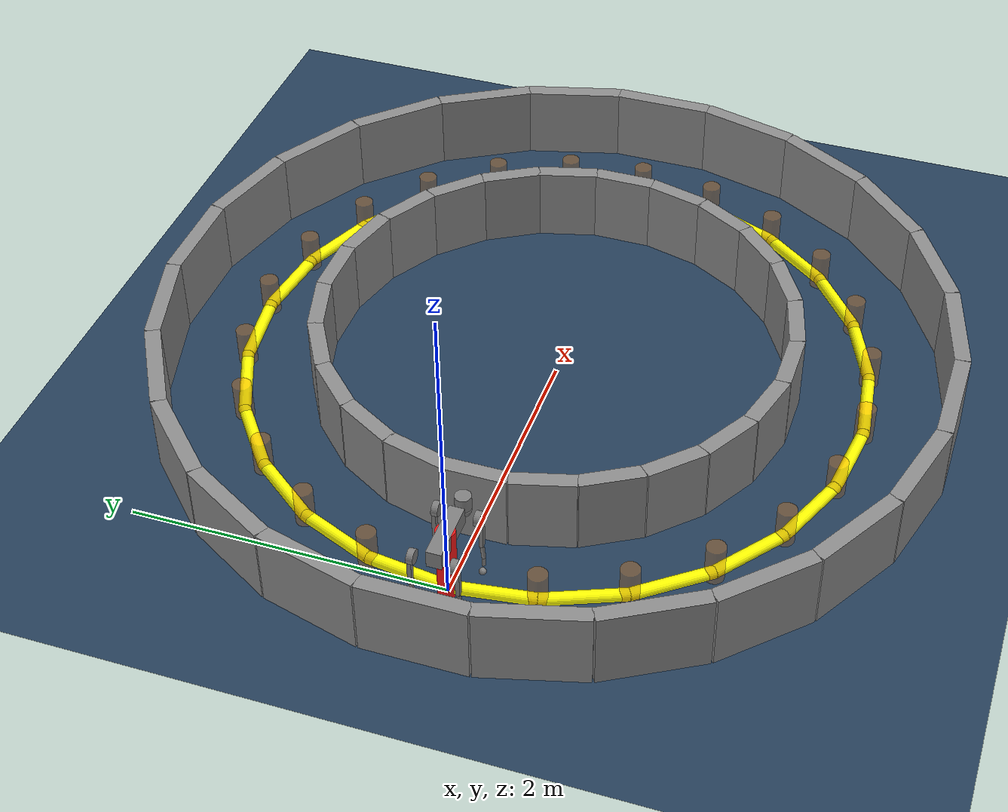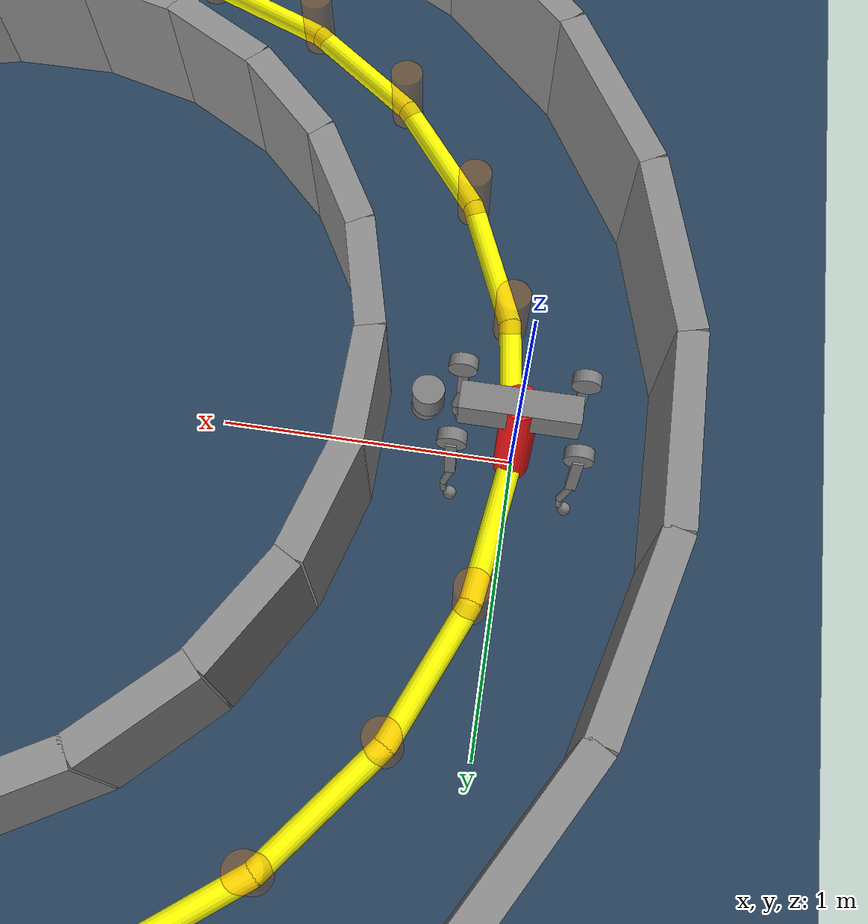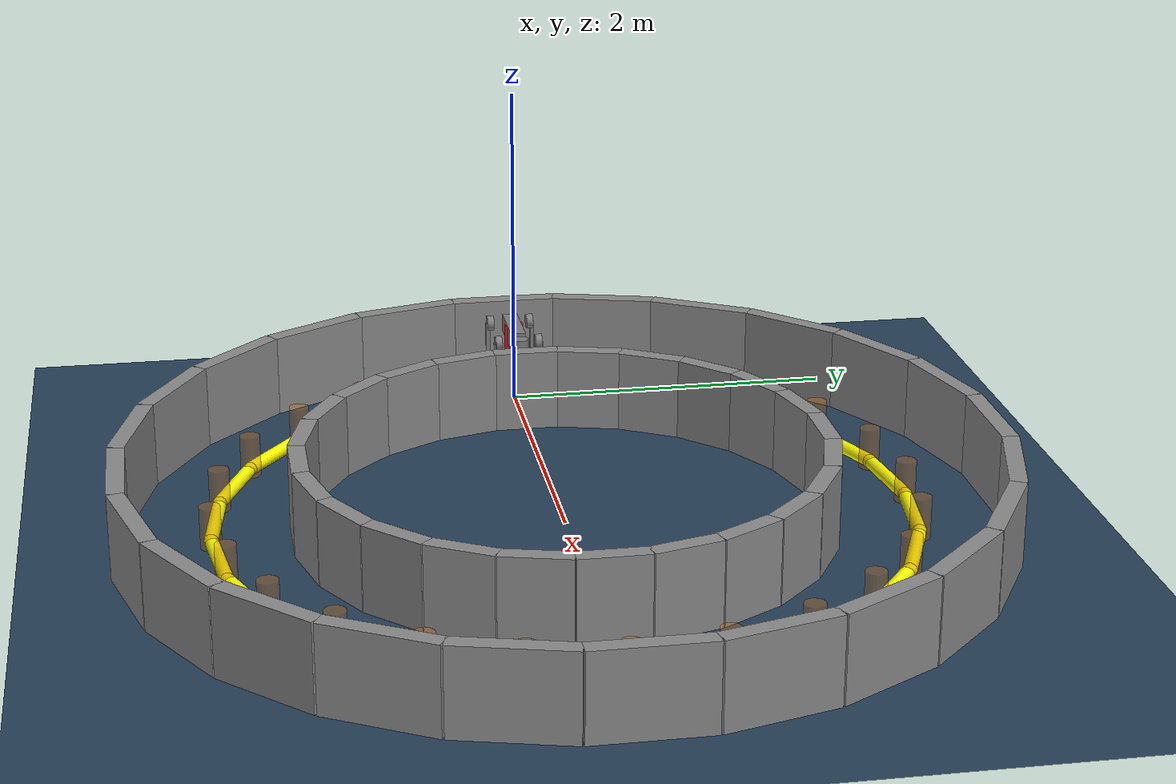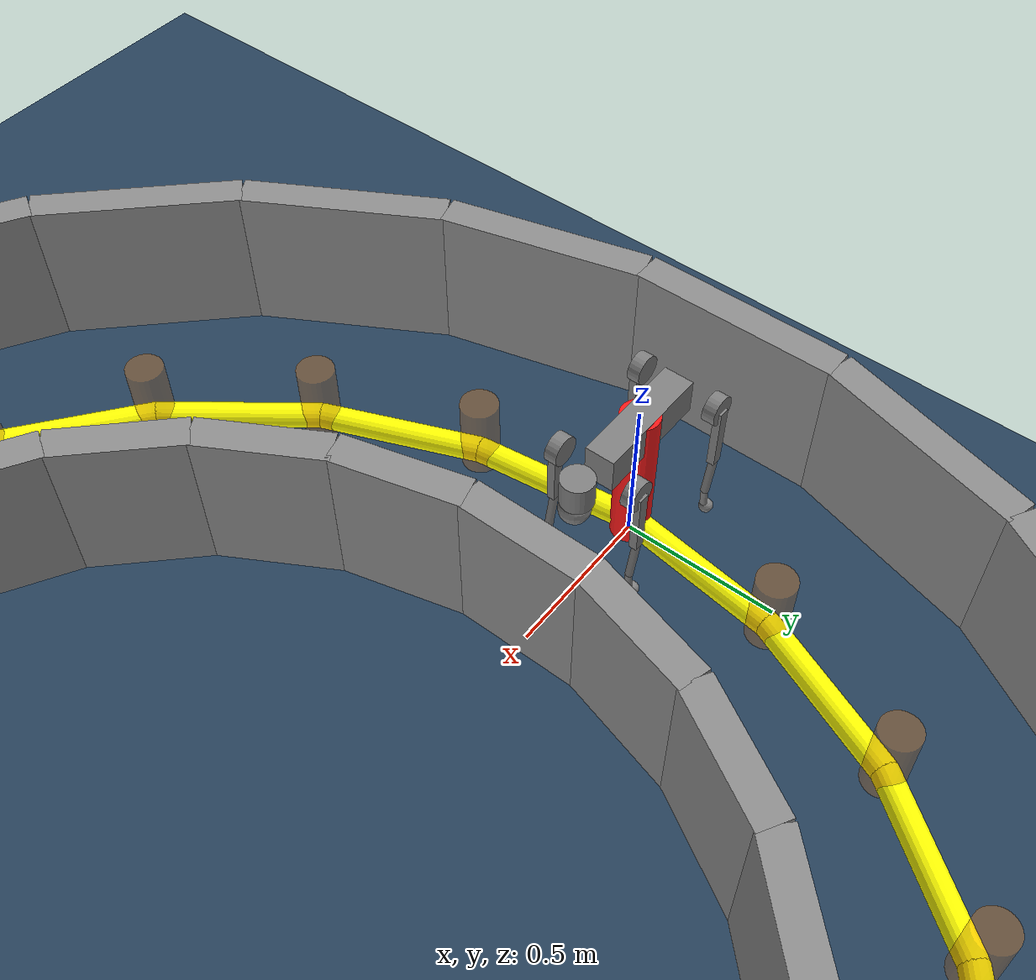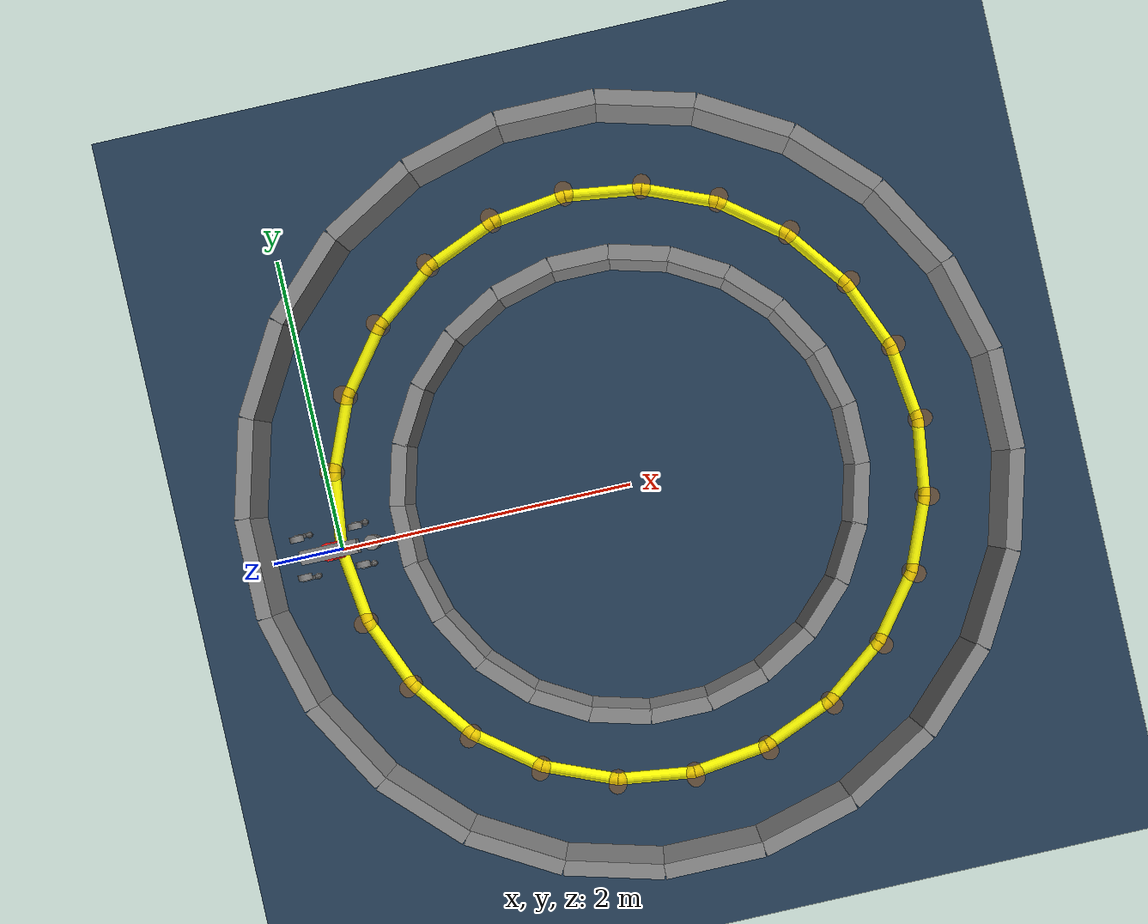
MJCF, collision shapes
<mujoco model="go2 small circle path walled">
  <include file="go2.xml"/>

  <statistic center="2 0 0" extent="4"/>

  <visual>
    <headlight diffuse="0.6 0.6 0.6" ambient="0.3 0.3 0.3" specular="0 0 0"/>
    <rgba haze="0.15 0.25 0.35 1"/>
    <global azimuth="-130" elevation="-20"/>
  </visual>

  <asset>
    <texture type="skybox" builtin="gradient" rgb1="0.3 0.5 0.7" rgb2="0 0 0" width="512" height="3072"/>
    <texture type="2d" name="groundplane" builtin="checker" mark="edge" rgb1="0.2 0.3 0.4" rgb2="0.1 0.2 0.3"
      markrgb="0.8 0.8 0.8" width="300" height="300"/>
    <material name="groundplane" texture="groundplane" texuniform="true" texrepeat="5 5" reflectance="0.2"/>
  </asset>

  <worldbody>
    <light pos="2 0 4" dir="0 0 -1" directional="true"/>
    <geom name="floor" size="0 0 0.05" type="plane" material="groundplane"/>

    <!-- ── Poles (Red = spawn/finish, Orange = intermediate) ─────────────── -->
    <geom name="pole_0"  type="cylinder" pos=" 4.000  0.000 0.125" size="0.06 0.125" rgba="1.0 0.5 0.0 0.3" contype="0" conaffinity="0"/>
    <geom name="pole_1"  type="cylinder" pos=" 3.932  0.518 0.125" size="0.06 0.125" rgba="1.0 0.5 0.0 0.3" contype="0" conaffinity="0"/>
    <geom name="pole_2"  type="cylinder" pos=" 3.732  1.000 0.125" size="0.06 0.125" rgba="1.0 0.5 0.0 0.3" contype="0" conaffinity="0"/>
    <geom name="pole_3"  type="cylinder" pos=" 3.414  1.414 0.125" size="0.06 0.125" rgba="1.0 0.5 0.0 0.3" contype="0" conaffinity="0"/>
    <geom name="pole_4"  type="cylinder" pos=" 3.000  1.732 0.125" size="0.06 0.125" rgba="1.0 0.5 0.0 0.3" contype="0" conaffinity="0"/>
    <geom name="pole_5"  type="cylinder" pos=" 2.518  1.932 0.125" size="0.06 0.125" rgba="1.0 0.5 0.0 0.3" contype="0" conaffinity="0"/>
    <geom name="pole_6"  type="cylinder" pos=" 2.000  2.000 0.125" size="0.06 0.125" rgba="1.0 0.5 0.0 0.3" contype="0" conaffinity="0"/>
    <geom name="pole_7"  type="cylinder" pos=" 1.482  1.932 0.125" size="0.06 0.125" rgba="1.0 0.5 0.0 0.3" contype="0" conaffinity="0"/>
    <geom name="pole_8"  type="cylinder" pos=" 1.000  1.732 0.125" size="0.06 0.125" rgba="1.0 0.5 0.0 0.3" contype="0" conaffinity="0"/>
    <geom name="pole_9"  type="cylinder" pos=" 0.586  1.414 0.125" size="0.06 0.125" rgba="1.0 0.5 0.0 0.3" contype="0" conaffinity="0"/>
    <geom name="pole_10" type="cylinder" pos=" 0.268  1.000 0.125" size="0.06 0.125" rgba="1.0 0.5 0.0 0.3" contype="0" conaffinity="0"/>
    <geom name="pole_11" type="cylinder" pos=" 0.068  0.518 0.125" size="0.06 0.125" rgba="1.0 0.5 0.0 0.3" contype="0" conaffinity="0"/>
    <geom name="pole_12" type="cylinder" pos=" 0.000  0.000 0.25" size="0.06 0.25" rgba="1.0 0.1 0.1 1" contype="0" conaffinity="0"/>
    <geom name="pole_13" type="cylinder" pos=" 0.068 -0.518 0.125" size="0.06 0.125" rgba="1.0 0.5 0.0 0.3" contype="0" conaffinity="0"/>
    <geom name="pole_14" type="cylinder" pos=" 0.268 -1.000 0.125" size="0.06 0.125" rgba="1.0 0.5 0.0 0.3" contype="0" conaffinity="0"/>
    <geom name="pole_15" type="cylinder" pos=" 0.586 -1.414 0.125" size="0.06 0.125" rgba="1.0 0.5 0.0 0.3" contype="0" conaffinity="0"/>
    <geom name="pole_16" type="cylinder" pos=" 1.000 -1.732 0.125" size="0.06 0.125" rgba="1.0 0.5 0.0 0.3" contype="0" conaffinity="0"/>
    <geom name="pole_17" type="cylinder" pos=" 1.482 -1.932 0.125" size="0.06 0.125" rgba="1.0 0.5 0.0 0.3" contype="0" conaffinity="0"/>
    <geom name="pole_18" type="cylinder" pos=" 2.000 -2.000 0.125" size="0.06 0.125" rgba="1.0 0.5 0.0 0.3" contype="0" conaffinity="0"/>
    <geom name="pole_19" type="cylinder" pos=" 2.518 -1.932 0.125" size="0.06 0.125" rgba="1.0 0.5 0.0 0.3" contype="0" conaffinity="0"/>
    <geom name="pole_20" type="cylinder" pos=" 3.000 -1.732 0.125" size="0.06 0.125" rgba="1.0 0.5 0.0 0.3" contype="0" conaffinity="0"/>
    <geom name="pole_21" type="cylinder" pos=" 3.414 -1.414 0.125" size="0.06 0.125" rgba="1.0 0.5 0.0 0.3" contype="0" conaffinity="0"/>
    <geom name="pole_22" type="cylinder" pos=" 3.732 -1.000 0.125" size="0.06 0.125" rgba="1.0 0.5 0.0 0.3" contype="0" conaffinity="0"/>
    <geom name="pole_23" type="cylinder" pos=" 3.932 -0.518 0.125" size="0.06 0.125" rgba="1.0 0.5 0.0 0.3" contype="0" conaffinity="0"/>

    <!-- ── Arc segments (capsule fromto, CW order) ───────────────────────── -->
    <geom name="arc_0"  type="capsule" fromto=" 4.000  0.000 0.04   3.932  0.518 0.04" size="0.04" rgba="1 1 0 0.9" contype="0" conaffinity="0"/>
    <geom name="arc_1"  type="capsule" fromto=" 3.932  0.518 0.04   3.732  1.000 0.04" size="0.04" rgba="1 1 0 0.9" contype="0" conaffinity="0"/>
    <geom name="arc_2"  type="capsule" fromto=" 3.732  1.000 0.04   3.414  1.414 0.04" size="0.04" rgba="1 1 0 0.9" contype="0" conaffinity="0"/>
    <geom name="arc_3"  type="capsule" fromto=" 3.414  1.414 0.04   3.000  1.732 0.04" size="0.04" rgba="1 1 0 0.9" contype="0" conaffinity="0"/>
    <geom name="arc_4"  type="capsule" fromto=" 3.000  1.732 0.04   2.518  1.932 0.04" size="0.04" rgba="1 1 0 0.9" contype="0" conaffinity="0"/>
    <geom name="arc_5"  type="capsule" fromto=" 2.518  1.932 0.04   2.000  2.000 0.04" size="0.04" rgba="1 1 0 0.9" contype="0" conaffinity="0"/>
    <geom name="arc_6"  type="capsule" fromto=" 2.000  2.000 0.04   1.482  1.932 0.04" size="0.04" rgba="1 1 0 0.9" contype="0" conaffinity="0"/>
    <geom name="arc_7"  type="capsule" fromto=" 1.482  1.932 0.04   1.000  1.732 0.04" size="0.04" rgba="1 1 0 0.9" contype="0" conaffinity="0"/>
    <geom name="arc_8"  type="capsule" fromto=" 1.000  1.732 0.04   0.586  1.414 0.04" size="0.04" rgba="1 1 0 0.9" contype="0" conaffinity="0"/>
    <geom name="arc_9"  type="capsule" fromto=" 0.586  1.414 0.04   0.268  1.000 0.04" size="0.04" rgba="1 1 0 0.9" contype="0" conaffinity="0"/>
    <geom name="arc_10" type="capsule" fromto=" 0.268  1.000 0.04   0.068  0.518 0.04" size="0.04" rgba="1 1 0 0.9" contype="0" conaffinity="0"/>
    <geom name="arc_11" type="capsule" fromto=" 0.068  0.518 0.04   0.000  0.000 0.04" size="0.04" rgba="1 1 0 0.9" contype="0" conaffinity="0"/>
    <geom name="arc_12" type="capsule" fromto=" 0.000  0.000 0.04   0.068 -0.518 0.04" size="0.04" rgba="1 1 0 0.9" contype="0" conaffinity="0"/>
    <geom name="arc_13" type="capsule" fromto=" 0.068 -0.518 0.04   0.268 -1.000 0.04" size="0.04" rgba="1 1 0 0.9" contype="0" conaffinity="0"/>
    <geom name="arc_14" type="capsule" fromto=" 0.268 -1.000 0.04   0.586 -1.414 0.04" size="0.04" rgba="1 1 0 0.9" contype="0" conaffinity="0"/>
    <geom name="arc_15" type="capsule" fromto=" 0.586 -1.414 0.04   1.000 -1.732 0.04" size="0.04" rgba="1 1 0 0.9" contype="0" conaffinity="0"/>
    <geom name="arc_16" type="capsule" fromto=" 1.000 -1.732 0.04   1.482 -1.932 0.04" size="0.04" rgba="1 1 0 0.9" contype="0" conaffinity="0"/>
    <geom name="arc_17" type="capsule" fromto=" 1.482 -1.932 0.04   2.000 -2.000 0.04" size="0.04" rgba="1 1 0 0.9" contype="0" conaffinity="0"/>
    <geom name="arc_18" type="capsule" fromto=" 2.000 -2.000 0.04   2.518 -1.932 0.04" size="0.04" rgba="1 1 0 0.9" contype="0" conaffinity="0"/>
    <geom name="arc_19" type="capsule" fromto=" 2.518 -1.932 0.04   3.000 -1.732 0.04" size="0.04" rgba="1 1 0 0.9" contype="0" conaffinity="0"/>
    <geom name="arc_20" type="capsule" fromto=" 3.000 -1.732 0.04   3.414 -1.414 0.04" size="0.04" rgba="1 1 0 0.9" contype="0" conaffinity="0"/>
    <geom name="arc_21" type="capsule" fromto=" 3.414 -1.414 0.04   3.732 -1.000 0.04" size="0.04" rgba="1 1 0 0.9" contype="0" conaffinity="0"/>
    <geom name="arc_22" type="capsule" fromto=" 3.732 -1.000 0.04   3.932 -0.518 0.04" size="0.04" rgba="1 1 0 0.9" contype="0" conaffinity="0"/>
    <geom name="arc_23" type="capsule" fromto=" 3.932 -0.518 0.04   4.000  0.000 0.04" size="0.04" rgba="1 1 0 0.9" contype="0" conaffinity="0"/>

    <!-- ── Outer ring walls (r=2.5 m, half-len=0.33 m) ──────────────────── -->
    <geom name="wall_out_0"  type="box" pos=" 4.500  0.000 0.25" size="0.33 0.05 0.25" euler="0 0 1.5708" rgba="0.55 0.55 0.55 1"/>
    <geom name="wall_out_1"  type="box" pos=" 4.415  0.647 0.25" size="0.33 0.05 0.25" euler="0 0 1.8326" rgba="0.55 0.55 0.55 1"/>
    <geom name="wall_out_2"  type="box" pos=" 4.165  1.250 0.25" size="0.33 0.05 0.25" euler="0 0 2.0944" rgba="0.55 0.55 0.55 1"/>
    <geom name="wall_out_3"  type="box" pos=" 3.768  1.768 0.25" size="0.33 0.05 0.25" euler="0 0 2.3562" rgba="0.55 0.55 0.55 1"/>
    <geom name="wall_out_4"  type="box" pos=" 3.250  2.165 0.25" size="0.33 0.05 0.25" euler="0 0 2.6180" rgba="0.55 0.55 0.55 1"/>
    <geom name="wall_out_5"  type="box" pos=" 2.647  2.415 0.25" size="0.33 0.05 0.25" euler="0 0 2.8798" rgba="0.55 0.55 0.55 1"/>
    <geom name="wall_out_6"  type="box" pos=" 2.000  2.500 0.25" size="0.33 0.05 0.25" euler="0 0 3.1416" rgba="0.55 0.55 0.55 1"/>
    <geom name="wall_out_7"  type="box" pos=" 1.353  2.415 0.25" size="0.33 0.05 0.25" euler="0 0 3.4034" rgba="0.55 0.55 0.55 1"/>
    <geom name="wall_out_8"  type="box" pos=" 0.750  2.165 0.25" size="0.33 0.05 0.25" euler="0 0 3.6652" rgba="0.55 0.55 0.55 1"/>
    <geom name="wall_out_9"  type="box" pos=" 0.232  1.768 0.25" size="0.33 0.05 0.25" euler="0 0 3.9270" rgba="0.55 0.55 0.55 1"/>
    <geom name="wall_out_10" type="box" pos="-0.165  1.250 0.25" size="0.33 0.05 0.25" euler="0 0 4.1888" rgba="0.55 0.55 0.55 1"/>
    <geom name="wall_out_11" type="box" pos="-0.415  0.647 0.25" size="0.33 0.05 0.25" euler="0 0 4.4506" rgba="0.55 0.55 0.55 1"/>
    <geom name="wall_out_12" type="box" pos="-0.500  0.000 0.25" size="0.33 0.05 0.25" euler="0 0 4.7124" rgba="0.55 0.55 0.55 1"/>
    <geom name="wall_out_13" type="box" pos="-0.415 -0.647 0.25" size="0.33 0.05 0.25" euler="0 0 4.9742" rgba="0.55 0.55 0.55 1"/>
    <geom name="wall_out_14" type="box" pos="-0.165 -1.250 0.25" size="0.33 0.05 0.25" euler="0 0 5.2360" rgba="0.55 0.55 0.55 1"/>
    <geom name="wall_out_15" type="box" pos=" 0.232 -1.768 0.25" size="0.33 0.05 0.25" euler="0 0 5.4978" rgba="0.55 0.55 0.55 1"/>
    <geom name="wall_out_16" type="box" pos=" 0.750 -2.165 0.25" size="0.33 0.05 0.25" euler="0 0 5.7596" rgba="0.55 0.55 0.55 1"/>
    <geom name="wall_out_17" type="box" pos=" 1.353 -2.415 0.25" size="0.33 0.05 0.25" euler="0 0 6.0214" rgba="0.55 0.55 0.55 1"/>
    <geom name="wall_out_18" type="box" pos=" 2.000 -2.500 0.25" size="0.33 0.05 0.25" euler="0 0 0.0000" rgba="0.55 0.55 0.55 1"/>
    <geom name="wall_out_19" type="box" pos=" 2.647 -2.415 0.25" size="0.33 0.05 0.25" euler="0 0 0.2618" rgba="0.55 0.55 0.55 1"/>
    <geom name="wall_out_20" type="box" pos=" 3.250 -2.165 0.25" size="0.33 0.05 0.25" euler="0 0 0.5236" rgba="0.55 0.55 0.55 1"/>
    <geom name="wall_out_21" type="box" pos=" 3.768 -1.768 0.25" size="0.33 0.05 0.25" euler="0 0 0.7854" rgba="0.55 0.55 0.55 1"/>
    <geom name="wall_out_22" type="box" pos=" 4.165 -1.250 0.25" size="0.33 0.05 0.25" euler="0 0 1.0472" rgba="0.55 0.55 0.55 1"/>
    <geom name="wall_out_23" type="box" pos=" 4.415 -0.647 0.25" size="0.33 0.05 0.25" euler="0 0 1.3090" rgba="0.55 0.55 0.55 1"/>

    <!-- ── Inner ring walls (r=1.5 m, half-len=0.20 m) ──────────────────── -->
    <geom name="wall_in_0"  type="box" pos="3.500  0.000 0.25" size="0.20 0.05 0.25" euler="0 0 1.5708" rgba="0.55 0.55 0.55 1"/>
    <geom name="wall_in_1"  type="box" pos="3.449  0.388 0.25" size="0.20 0.05 0.25" euler="0 0 1.8326" rgba="0.55 0.55 0.55 1"/>
    <geom name="wall_in_2"  type="box" pos="3.299  0.750 0.25" size="0.20 0.05 0.25" euler="0 0 2.0944" rgba="0.55 0.55 0.55 1"/>
    <geom name="wall_in_3"  type="box" pos="3.061  1.061 0.25" size="0.20 0.05 0.25" euler="0 0 2.3562" rgba="0.55 0.55 0.55 1"/>
    <geom name="wall_in_4"  type="box" pos="2.750  1.299 0.25" size="0.20 0.05 0.25" euler="0 0 2.6180" rgba="0.55 0.55 0.55 1"/>
    <geom name="wall_in_5"  type="box" pos="2.388  1.449 0.25" size="0.20 0.05 0.25" euler="0 0 2.8798" rgba="0.55 0.55 0.55 1"/>
    <geom name="wall_in_6"  type="box" pos="2.000  1.500 0.25" size="0.20 0.05 0.25" euler="0 0 3.1416" rgba="0.55 0.55 0.55 1"/>
    <geom name="wall_in_7"  type="box" pos="1.612  1.449 0.25" size="0.20 0.05 0.25" euler="0 0 3.4034" rgba="0.55 0.55 0.55 1"/>
    <geom name="wall_in_8"  type="box" pos="1.250  1.299 0.25" size="0.20 0.05 0.25" euler="0 0 3.6652" rgba="0.55 0.55 0.55 1"/>
    <geom name="wall_in_9"  type="box" pos="0.939  1.061 0.25" size="0.20 0.05 0.25" euler="0 0 3.9270" rgba="0.55 0.55 0.55 1"/>
    <geom name="wall_in_10" type="box" pos="0.701  0.750 0.25" size="0.20 0.05 0.25" euler="0 0 4.1888" rgba="0.55 0.55 0.55 1"/>
    <geom name="wall_in_11" type="box" pos="0.551  0.388 0.25" size="0.20 0.05 0.25" euler="0 0 4.4506" rgba="0.55 0.55 0.55 1"/>
    <geom name="wall_in_12" type="box" pos="0.500  0.000 0.25" size="0.20 0.05 0.25" euler="0 0 4.7124" rgba="0.55 0.55 0.55 1"/>
    <geom name="wall_in_13" type="box" pos="0.551 -0.388 0.25" size="0.20 0.05 0.25" euler="0 0 4.9742" rgba="0.55 0.55 0.55 1"/>
    <geom name="wall_in_14" type="box" pos="0.701 -0.750 0.25" size="0.20 0.05 0.25" euler="0 0 5.2360" rgba="0.55 0.55 0.55 1"/>
    <geom name="wall_in_15" type="box" pos="0.939 -1.061 0.25" size="0.20 0.05 0.25" euler="0 0 5.4978" rgba="0.55 0.55 0.55 1"/>
    <geom name="wall_in_16" type="box" pos="1.250 -1.299 0.25" size="0.20 0.05 0.25" euler="0 0 5.7596" rgba="0.55 0.55 0.55 1"/>
    <geom name="wall_in_17" type="box" pos="1.612 -1.449 0.25" size="0.20 0.05 0.25" euler="0 0 6.0214" rgba="0.55 0.55 0.55 1"/>
    <geom name="wall_in_18" type="box" pos="2.000 -1.500 0.25" size="0.20 0.05 0.25" euler="0 0 0.0000" rgba="0.55 0.55 0.55 1"/>
    <geom name="wall_in_19" type="box" pos="2.388 -1.449 0.25" size="0.20 0.05 0.25" euler="0 0 0.2618" rgba="0.55 0.55 0.55 1"/>
    <geom name="wall_in_20" type="box" pos="2.750 -1.299 0.25" size="0.20 0.05 0.25" euler="0 0 0.5236" rgba="0.55 0.55 0.55 1"/>
    <geom name="wall_in_21" type="box" pos="3.061 -1.061 0.25" size="0.20 0.05 0.25" euler="0 0 0.7854" rgba="0.55 0.55 0.55 1"/>
    <geom name="wall_in_22" type="box" pos="3.299 -0.750 0.25" size="0.20 0.05 0.25" euler="0 0 1.0472" rgba="0.55 0.55 0.55 1"/>
    <geom name="wall_in_23" type="box" pos="3.449 -0.388 0.25" size="0.20 0.05 0.25" euler="0 0 1.3090" rgba="0.55 0.55 0.55 1"/>

  </worldbody>

  <!-- Spawn at (0,0) facing south (CW tangent at 180°): yaw=-90° -->
  <!-- qw=cos(-45°)=0.7071, qz=sin(-45°)=-0.7071 -->
  <keyframe>
    <key name="home" qpos="0 0 0.27 0.7071 0 0 -0.7071 0 0.9 -1.8 0 0.9 -1.8 0 0.9 -1.8 0 0.9 -1.8"
      ctrl="0 0.9 -1.8 0 0.9 -1.8 0 0.9 -1.8 0 0.9 -1.8" />
  </keyframe>

</mujoco>

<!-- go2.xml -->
<mujoco model="go2">
  <compiler angle="radian" meshdir="assets" autolimits="true" />

  <option cone="elliptic" impratio="100" />

  <default>
    <default class="go2">
      <geom friction="0.4" margin="0.001" condim="1"/>
      <joint axis="0 1 0" damping="0.1" armature="0.01" frictionloss="0.2"/>
      <motor ctrlrange="-23.7 23.7"/>
      <default class="abduction">
        <joint axis="1 0 0" range="-1.0472 1.0472"/>
      </default>
      <default class="hip">
        <default class="front_hip">
          <joint range="-1.5708 3.4907"/>
        </default>
        <default class="back_hip">
          <joint range="-0.5236 4.5379"/>
        </default>
      </default>
      <default class="knee">
        <joint range="-2.7227 -0.83776"/>
        <motor ctrlrange="-45.43 45.43"/>
      </default>
      <default class="visual">
        <geom type="mesh" contype="0" conaffinity="0" group="2"/>
      </default>
      <default class="collision">
        <geom group="3"/>
        <default class="foot">
          <geom size="0.022" pos="-0.002 0 -0.213" priority="1" condim="6"
            friction="0.8 0.02 0.01"/>
        </default>
      </default>
    </default>
  </default>

  <asset>
    <material name="metal" rgba=".9 .95 .95 1" />
    <material name="black" rgba="0 0 0 1" />
    <material name="white" rgba="1 1 1 1" />
    <material name="gray" rgba="0.671705 0.692426 0.774270 1" />

    <mesh file="base_0.obj" />
    <mesh file="base_1.obj" />
    <mesh file="base_2.obj" />
    <mesh file="base_3.obj" />
    <mesh file="base_4.obj" />
    <mesh file="hip_0.obj" />
    <mesh file="hip_1.obj" />
    <mesh file="thigh_0.obj" />
    <mesh file="thigh_1.obj" />
    <mesh file="thigh_mirror_0.obj" />
    <mesh file="thigh_mirror_1.obj" />
    <mesh file="calf_0.obj" />
    <mesh file="calf_1.obj" />
    <mesh file="calf_mirror_0.obj" />
    <mesh file="calf_mirror_1.obj" />
    <mesh file="foot.obj" />
  </asset>

  <worldbody>
    <body name="base_link" pos="0 0 0.445" childclass="go2">
      <inertial pos="0.021112 0 -0.005366" quat="-0.000543471 0.713435 -0.00173769 0.700719"
        mass="6.921"
        diaginertia="0.107027 0.0980771 0.0244531" />
      <freejoint />
      <geom mesh="base_0" material="black" class="visual" />
      <geom mesh="base_1" material="black" class="visual" />
      <geom mesh="base_2" material="black" class="visual" />
      <geom mesh="base_3" material="white" class="visual" />
      <geom mesh="base_4" material="gray" class="visual" />
      <geom size="0.1881 0.04675 0.057" type="box" class="collision" />
      <geom size="0.05 0.045" pos="0.285 0 0.01" type="cylinder" class="collision" />
      <geom size="0.047" pos="0.293 0 -0.06" class="collision" />
      <site name="imu" pos="-0.02557 0 0.04232" />
      <!-- 1st-person camera: mounted at Go2's head, looking forward (+X body) -->
      <camera name="head_cam" pos="0.30 0 0.05" xyaxes="0 -1 0 0 0 1" fovy="90" />
      <body name="FL_hip" pos="0.1934 0.0465 0">
        <inertial pos="-0.0054 0.00194 -0.000105" quat="0.497014 0.499245 0.505462 0.498237"
          mass="0.678"
          diaginertia="0.00088403 0.000596003 0.000479967" />
        <joint name="FL_hip_joint" class="abduction" />
        <geom mesh="hip_0" material="metal" class="visual" />
        <geom mesh="hip_1" material="gray" class="visual" />
        <geom size="0.046 0.02" pos="0 0.08 0" quat="1 1 0 0" type="cylinder" class="collision" />
        <body name="FL_thigh" pos="0 0.0955 0">
          <inertial pos="-0.00374 -0.0223 -0.0327" quat="0.829533 0.0847635 -0.0200632 0.551623"
            mass="1.152"
            diaginertia="0.00594973 0.00584149 0.000878787" />
          <joint name="FL_thigh_joint" class="front_hip" />
          <geom mesh="thigh_0" material="metal" class="visual" />
          <geom mesh="thigh_1" material="gray" class="visual" />
          <geom size="0.1065 0.01225 0.017" pos="0 0 -0.1065" quat="0.707107 0 0.707107 0"
            type="box" class="collision" />
          <body name="FL_calf" pos="0 0 -0.213">
            <inertial pos="0.00629595 -0.000622121 -0.141417"
              quat="0.710672 0.00154099 -0.00450087 0.703508"
              mass="0.241352" diaginertia="0.0014901 0.00146356 5.31397e-05" />
            <joint name="FL_calf_joint" class="knee" />
            <geom mesh="calf_0" material="gray" class="visual" />
            <geom mesh="calf_1" material="black" class="visual" />
            <geom size="0.012 0.06" pos="0.008 0 -0.06" quat="0.994493 0 -0.104807 0"
              type="cylinder" class="collision" />
            <geom size="0.011 0.0325" pos="0.02 0 -0.148" quat="0.999688 0 0.0249974 0"
              type="cylinder" class="collision" />
            <geom pos="0 0 -0.213" mesh="foot" class="visual" material="black" />
            <geom name="FL" class="foot" />
            <body name="FL_foot" pos="0 0 -0.213" />
          </body>
        </body>
      </body>
      <body name="FR_hip" pos="0.1934 -0.0465 0">
        <inertial pos="-0.0054 -0.00194 -0.000105" quat="0.498237 0.505462 0.499245 0.497014"
          mass="0.678"
          diaginertia="0.00088403 0.000596003 0.000479967" />
        <joint name="FR_hip_joint" class="abduction" />
        <geom mesh="hip_0" material="metal" class="visual" quat="4.63268e-05 1 0 0" />
        <geom mesh="hip_1" material="gray" class="visual" quat="4.63268e-05 1 0 0" />
        <geom size="0.046 0.02" pos="0 -0.08 0" quat="0.707107 0.707107 0 0" type="cylinder"
          class="collision" />
        <body name="FR_thigh" pos="0 -0.0955 0">
          <inertial pos="-0.00374 0.0223 -0.0327" quat="0.551623 -0.0200632 0.0847635 0.829533"
            mass="1.152"
            diaginertia="0.00594973 0.00584149 0.000878787" />
          <joint name="FR_thigh_joint" class="front_hip" />
          <geom mesh="thigh_mirror_0" material="metal" class="visual" />
          <geom mesh="thigh_mirror_1" material="gray" class="visual" />
          <geom size="0.1065 0.01225 0.017" pos="0 0 -0.1065" quat="0.707107 0 0.707107 0"
            type="box" class="collision" />
          <body name="FR_calf" pos="0 0 -0.213">
            <inertial pos="0.00629595 0.000622121 -0.141417"
              quat="0.703508 -0.00450087 0.00154099 0.710672"
              mass="0.241352" diaginertia="0.0014901 0.00146356 5.31397e-05" />
            <joint name="FR_calf_joint" class="knee" />
            <geom mesh="calf_mirror_0" material="gray" class="visual" />
            <geom mesh="calf_mirror_1" material="black" class="visual" />
            <geom size="0.013 0.06" pos="0.01 0 -0.06" quat="0.995004 0 -0.0998334 0"
              type="cylinder" class="collision" />
            <geom size="0.011 0.0325" pos="0.02 0 -0.148" quat="0.999688 0 0.0249974 0"
              type="cylinder" class="collision" />
            <geom pos="0 0 -0.213" mesh="foot" class="visual" material="black" />
            <geom name="FR" class="foot" />
            <body name="FR_foot" pos="0 0 -0.213" />
          </body>
        </body>
      </body>
      <body name="RL_hip" pos="-0.1934 0.0465 0">
        <inertial pos="0.0054 0.00194 -0.000105" quat="0.505462 0.498237 0.497014 0.499245"
          mass="0.678"
          diaginertia="0.00088403 0.000596003 0.000479967" />
        <joint name="RL_hip_joint" class="abduction" />
        <geom mesh="hip_0" material="metal" class="visual" quat="4.63268e-05 0 1 0" />
        <geom mesh="hip_1" material="gray" class="visual" quat="4.63268e-05 0 1 0" />
        <geom size="0.046 0.02" pos="0 0.08 0" quat="0.707107 0.707107 0 0" type="cylinder"
          class="collision" />
        <body name="RL_thigh" pos="0 0.0955 0">
          <inertial pos="-0.00374 -0.0223 -0.0327" quat="0.829533 0.0847635 -0.0200632 0.551623"
            mass="1.152"
            diaginertia="0.00594973 0.00584149 0.000878787" />
          <joint name="RL_thigh_joint" class="back_hip" />
          <geom mesh="thigh_0" material="metal" class="visual" />
          <geom mesh="thigh_1" material="gray" class="visual" />
          <geom size="0.1065 0.01225 0.017" pos="0 0 -0.1065" quat="0.707107 0 0.707107 0"
            type="box" class="collision" />
          <body name="RL_calf" pos="0 0 -0.213">
            <inertial pos="0.00629595 -0.000622121 -0.141417"
              quat="0.710672 0.00154099 -0.00450087 0.703508"
              mass="0.241352" diaginertia="0.0014901 0.00146356 5.31397e-05" />
            <joint name="RL_calf_joint" class="knee" />
            <geom mesh="calf_0" material="gray" class="visual" />
            <geom mesh="calf_1" material="black" class="visual" />
            <geom size="0.013 0.06" pos="0.01 0 -0.06" quat="0.995004 0 -0.0998334 0"
              type="cylinder" class="collision" />
            <geom size="0.011 0.0325" pos="0.02 0 -0.148" quat="0.999688 0 0.0249974 0"
              type="cylinder" class="collision" />
            <geom pos="0 0 -0.213" mesh="foot" class="visual" material="black" />
            <geom name="RL" class="foot" />
            <body name="RL_foot" pos="0 0 -0.213" />
          </body>
        </body>
      </body>
      <body name="RR_hip" pos="-0.1934 -0.0465 0">
        <inertial pos="0.0054 -0.00194 -0.000105" quat="0.499245 0.497014 0.498237 0.505462"
          mass="0.678"
          diaginertia="0.00088403 0.000596003 0.000479967" />
        <joint name="RR_hip_joint" class="abduction" />
        <geom mesh="hip_0" material="metal" class="visual"
          quat="2.14617e-09 4.63268e-05 4.63268e-05 -1" />
        <geom mesh="hip_1" material="gray" class="visual"
          quat="2.14617e-09 4.63268e-05 4.63268e-05 -1" />
        <geom size="0.046 0.02" pos="0 -0.08 0" quat="0.707107 0.707107 0 0" type="cylinder"
          class="collision" />
        <body name="RR_thigh" pos="0 -0.0955 0">
          <inertial pos="-0.00374 0.0223 -0.0327" quat="0.551623 -0.0200632 0.0847635 0.829533"
            mass="1.152"
            diaginertia="0.00594973 0.00584149 0.000878787" />
          <joint name="RR_thigh_joint" class="back_hip" />
          <geom mesh="thigh_mirror_0" material="metal" class="visual" />
          <geom mesh="thigh_mirror_1" material="gray" class="visual" />
          <geom size="0.1065 0.01225 0.017" pos="0 0 -0.1065" quat="0.707107 0 0.707107 0"
            type="box" class="collision" />
          <body name="RR_calf" pos="0 0 -0.213">
            <inertial pos="0.00629595 0.000622121 -0.141417"
              quat="0.703508 -0.00450087 0.00154099 0.710672"
              mass="0.241352" diaginertia="0.0014901 0.00146356 5.31397e-05" />
            <joint name="RR_calf_joint" class="knee" />
            <geom mesh="calf_mirror_0" material="gray" class="visual" />
            <geom mesh="calf_mirror_1" material="black" class="visual" />
            <geom size="0.013 0.06" pos="0.01 0 -0.06" quat="0.995004 0 -0.0998334 0"
              type="cylinder" class="collision" />
            <geom size="0.011 0.0325" pos="0.02 0 -0.148" quat="0.999688 0 0.0249974 0"
              type="cylinder" class="collision" />
            <geom pos="0 0 -0.213" mesh="foot" class="visual" material="black" />
            <geom name="RR" class="foot" />
            <body name="RR_foot" pos="0 0 -0.213" />
          </body>
        </body>
      </body>
    </body>
  </worldbody>

  <actuator>
    <motor class="abduction" name="FR_hip" joint="FR_hip_joint" />
    <motor class="hip" name="FR_thigh" joint="FR_thigh_joint" />
    <motor class="knee" name="FR_calf" joint="FR_calf_joint" />
    <motor class="abduction" name="FL_hip" joint="FL_hip_joint" />
    <motor class="hip" name="FL_thigh" joint="FL_thigh_joint" />
    <motor class="knee" name="FL_calf" joint="FL_calf_joint" />
    <motor class="abduction" name="RR_hip" joint="RR_hip_joint" />
    <motor class="hip" name="RR_thigh" joint="RR_thigh_joint" />
    <motor class="knee" name="RR_calf" joint="RR_calf_joint" />
    <motor class="abduction" name="RL_hip" joint="RL_hip_joint" />
    <motor class="hip" name="RL_thigh" joint="RL_thigh_joint" />
    <motor class="knee" name="RL_calf" joint="RL_calf_joint" />
  </actuator>

  <sensor>
    <jointpos name="FR_hip_pos" joint="FR_hip_joint" />
    <jointpos name="FR_thigh_pos" joint="FR_thigh_joint" />
    <jointpos name="FR_calf_pos" joint="FR_calf_joint" />
    <jointpos name="FL_hip_pos" joint="FL_hip_joint" />
    <jointpos name="FL_thigh_pos" joint="FL_thigh_joint" />
    <jointpos name="FL_calf_pos" joint="FL_calf_joint" />
    <jointpos name="RR_hip_pos" joint="RR_hip_joint" />
    <jointpos name="RR_thigh_pos" joint="RR_thigh_joint" />
    <jointpos name="RR_calf_pos" joint="RR_calf_joint" />
    <jointpos name="RL_hip_pos" joint="RL_hip_joint" />
    <jointpos name="RL_thigh_pos" joint="RL_thigh_joint" />
    <jointpos name="RL_calf_pos" joint="RL_calf_joint" />

    <jointvel name="FR_hip_vel" joint="FR_hip_joint" />
    <jointvel name="FR_thigh_vel" joint="FR_thigh_joint" />
    <jointvel name="FR_calf_vel" joint="FR_calf_joint" />
    <jointvel name="FL_hip_vel" joint="FL_hip_joint" />
    <jointvel name="FL_thigh_vel" joint="FL_thigh_joint" />
    <jointvel name="FL_calf_vel" joint="FL_calf_joint" />
    <jointvel name="RR_hip_vel" joint="RR_hip_joint" />
    <jointvel name="RR_thigh_vel" joint="RR_thigh_joint" />
    <jointvel name="RR_calf_vel" joint="RR_calf_joint" />
    <jointvel name="RL_hip_vel" joint="RL_hip_joint" />
    <jointvel name="RL_thigh_vel" joint="RL_thigh_joint" />
    <jointvel name="RL_calf_vel" joint="RL_calf_joint" />

    <jointactuatorfrc name="FR_hip_torque" joint="FR_hip_joint" noise="0.01" />
    <jointactuatorfrc name="FR_thigh_torque" joint="FR_thigh_joint" noise="0.01" />
    <jointactuatorfrc name="FR_calf_torque" joint="FR_calf_joint" noise="0.01" />
    <jointactuatorfrc name="FL_hip_torque" joint="FL_hip_joint" noise="0.01" />
    <jointactuatorfrc name="FL_thigh_torque" joint="FL_thigh_joint" noise="0.01" />
    <jointactuatorfrc name="FL_calf_torque" joint="FL_calf_joint" noise="0.01" />
    <jointactuatorfrc name="RR_hip_torque" joint="RR_hip_joint" noise="0.01" />
    <jointactuatorfrc name="RR_thigh_torque" joint="RR_thigh_joint" noise="0.01" />
    <jointactuatorfrc name="RR_calf_torque" joint="RR_calf_joint" noise="0.01" />
    <jointactuatorfrc name="RL_hip_torque" joint="RL_hip_joint" noise="0.01" />
    <jointactuatorfrc name="RL_thigh_torque" joint="RL_thigh_joint" noise="0.01" />
    <jointactuatorfrc name="RL_calf_torque" joint="RL_calf_joint" noise="0.01" />

    <framequat name="imu_quat" objtype="site" objname="imu" />
    <gyro name="imu_gyro" site="imu" />
    <accelerometer name="imu_acc" site="imu" />

    <framepos name="frame_pos" objtype="site" objname="imu" />
    <framelinvel name="frame_vel" objtype="site" objname="imu" />
  </sensor>

  <!-- keyframe "home" is defined in each scene XML so spawn angle can vary per scene -->
</mujoco>
